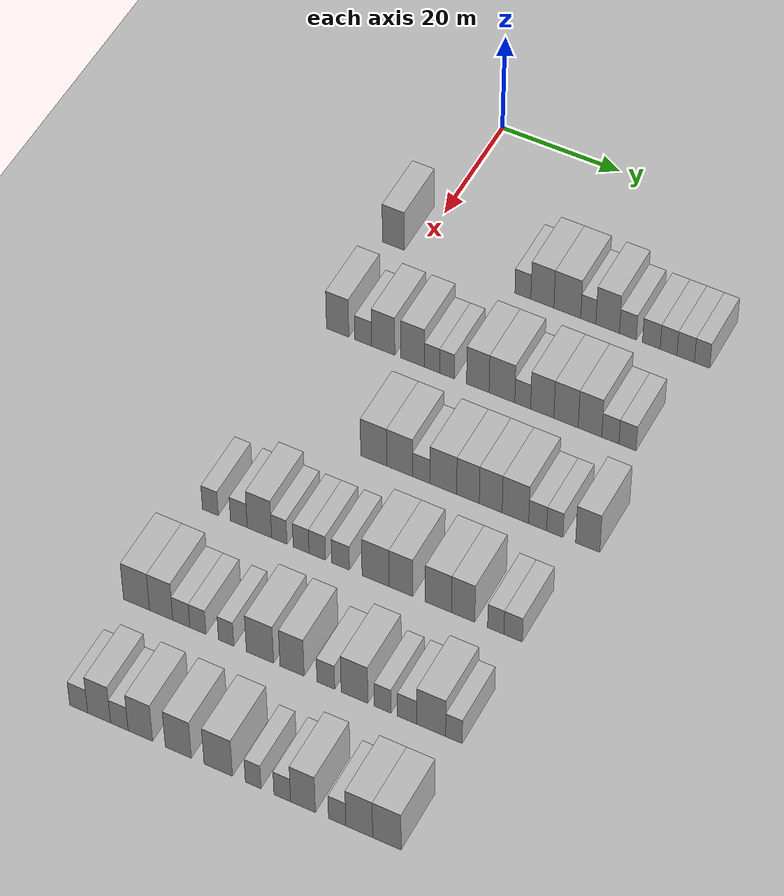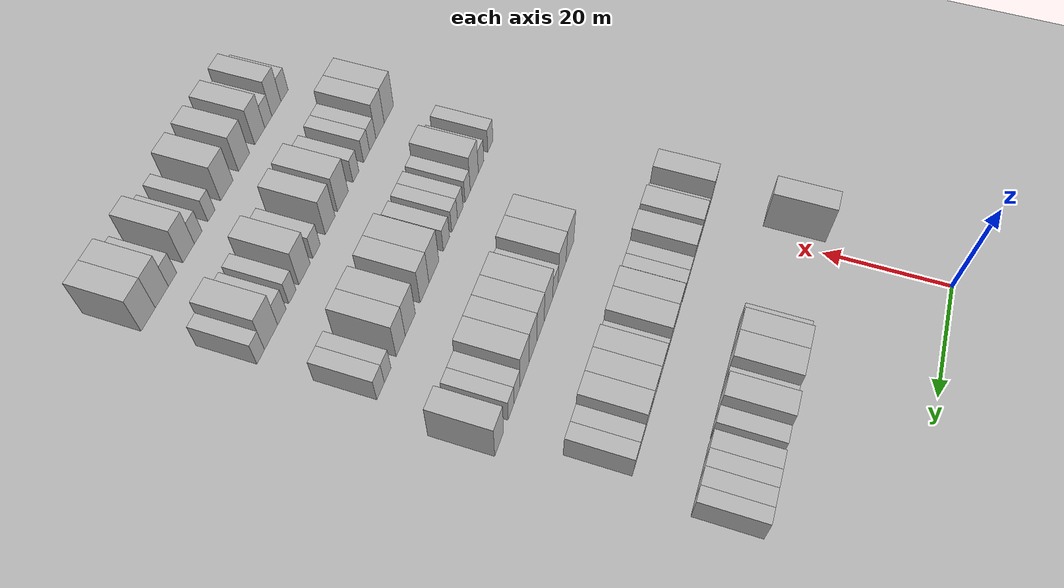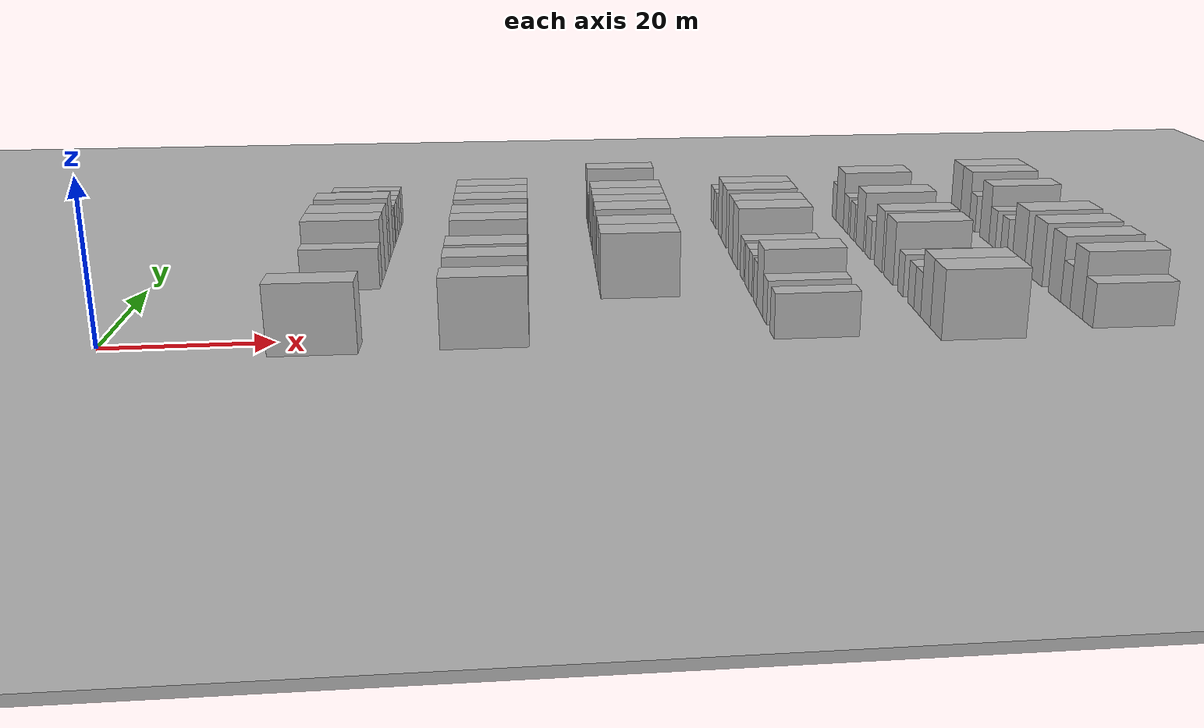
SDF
<sdf version="1.6">
 <world name="default">
  <include><name>ground_plane_1</name><uri>model://HANNAS_ground_plane</uri></include>
  <include>
   <name>ground_plane_2</name>
   <uri>model://HANNAS_ground_plane</uri>
   <pose>100 0 0  0 0 0</pose>
  </include>
  <model name="building_80">
   <static>1</static>
   <pose>25.0000 -3.7532 0 0.000000 0.000000 0.000000</pose>
   <link name="link">
    <pose>0 0 4.50 0 0 0</pose>
    <collision name="collision"><geometry><box><size>10.0000 3.7400 9.0000</size></box></geometry></collision>
    <visual name="visual">
     <cast_shadows>0</cast_shadows>
     <geometry><box><size>10.0000 3.7400 9.0000</size></box></geometry>
     <material>
      <script>
       <uri>model://HANNAS_wall/materials/scripts</uri>
       <uri>model://HANNAS_wall/materials/textures</uri>
       <name>vrc/HANNAS_wall</name>
      </script>
     </material>
    </visual>
   </link>
  </model>
  <model name="building_81">
   <static>1</static>
   <pose>25.0000 18.1059 0 0.000000 0.000000 0.000000</pose>
   <link name="link">
    <pose>0 0 3.00 0 0 0</pose>
    <collision name="collision"><geometry><box><size>10.0000 2.6594 6.0000</size></box></geometry></collision>
    <visual name="visual">
     <cast_shadows>0</cast_shadows>
     <geometry><box><size>10.0000 2.6594 6.0000</size></box></geometry>
     <material>
      <script>
       <uri>model://HANNAS_wall/materials/scripts</uri>
       <uri>model://HANNAS_wall/materials/textures</uri>
       <name>vrc/HANNAS_wall</name>
      </script>
     </material>
    </visual>
   </link>
  </model>
  <model name="building_82">
   <static>1</static>
   <pose>25.0000 21.3565 0 0.000000 0.000000 0.000000</pose>
   <link name="link">
    <pose>0 0 4.50 0 0 0</pose>
    <collision name="collision"><geometry><box><size>10.0000 3.8419 9.0000</size></box></geometry></collision>
    <visual name="visual">
     <cast_shadows>0</cast_shadows>
     <geometry><box><size>10.0000 3.8419 9.0000</size></box></geometry>
     <material>
      <script>
       <uri>model://HANNAS_wall/materials/scripts</uri>
       <uri>model://HANNAS_wall/materials/textures</uri>
       <name>vrc/HANNAS_wall</name>
      </script>
     </material>
    </visual>
   </link>
  </model>
  <model name="building_83">
   <static>1</static>
   <pose>25.0000 25.5041 0 0.000000 0.000000 0.000000</pose>
   <link name="link">
    <pose>0 0 4.50 0 0 0</pose>
    <collision name="collision"><geometry><box><size>10.0000 4.4533 9.0000</size></box></geometry></collision>
    <visual name="visual">
     <cast_shadows>0</cast_shadows>
     <geometry><box><size>10.0000 4.4533 9.0000</size></box></geometry>
     <material>
      <script>
       <uri>model://HANNAS_wall/materials/scripts</uri>
       <uri>model://HANNAS_wall/materials/textures</uri>
       <name>vrc/HANNAS_wall</name>
      </script>
     </material>
    </visual>
   </link>
  </model>
  <model name="building_84">
   <static>1</static>
   <pose>25.0000 28.9731 0 0.000000 0.000000 0.000000</pose>
   <link name="link">
    <pose>0 0 3.00 0 0 0</pose>
    <collision name="collision"><geometry><box><size>10.0000 2.4847 6.0000</size></box></geometry></collision>
    <visual name="visual">
     <cast_shadows>0</cast_shadows>
     <geometry><box><size>10.0000 2.4847 6.0000</size></box></geometry>
     <material>
      <script>
       <uri>model://HANNAS_wall/materials/scripts</uri>
       <uri>model://HANNAS_wall/materials/textures</uri>
       <name>vrc/HANNAS_wall</name>
      </script>
     </material>
    </visual>
   </link>
  </model>
  <model name="building_85">
   <static>1</static>
   <pose>25.0000 32.1549 0 0.000000 0.000000 0.000000</pose>
   <link name="link">
    <pose>0 0 4.50 0 0 0</pose>
    <collision name="collision"><geometry><box><size>10.0000 3.8789 9.0000</size></box></geometry></collision>
    <visual name="visual">
     <cast_shadows>0</cast_shadows>
     <geometry><box><size>10.0000 3.8789 9.0000</size></box></geometry>
     <material>
      <script>
       <uri>model://HANNAS_wall/materials/scripts</uri>
       <uri>model://HANNAS_wall/materials/textures</uri>
       <name>vrc/HANNAS_wall</name>
      </script>
     </material>
    </visual>
   </link>
  </model>
  <model name="building_86">
   <static>1</static>
   <pose>25.0000 35.4867 0 0.000000 0.000000 0.000000</pose>
   <link name="link">
    <pose>0 0 3.00 0 0 0</pose>
    <collision name="collision"><geometry><box><size>10.0000 2.7847 6.0000</size></box></geometry></collision>
    <visual name="visual">
     <cast_shadows>0</cast_shadows>
     <geometry><box><size>10.0000 2.7847 6.0000</size></box></geometry>
     <material>
      <script>
       <uri>model://HANNAS_wall/materials/scripts</uri>
       <uri>model://HANNAS_wall/materials/textures</uri>
       <name>vrc/HANNAS_wall</name>
      </script>
     </material>
    </visual>
   </link>
  </model>
  <model name="building_87">
   <static>1</static>
   <pose>25.0000 39.3214 0 0.000000 0.000000 0.000000</pose>
   <link name="link">
    <pose>0 0 3.00 0 0 0</pose>
    <collision name="collision"><geometry><box><size>10.0000 2.8847 6.0000</size></box></geometry></collision>
    <visual name="visual">
     <cast_shadows>0</cast_shadows>
     <geometry><box><size>10.0000 2.8847 6.0000</size></box></geometry>
     <material>
      <script>
       <uri>model://HANNAS_wall/materials/scripts</uri>
       <uri>model://HANNAS_wall/materials/textures</uri>
       <name>vrc/HANNAS_wall</name>
      </script>
     </material>
    </visual>
   </link>
  </model>
  <model name="building_88">
   <static>1</static>
   <pose>25.0000 42.1348 0 0.000000 0.000000 0.000000</pose>
   <link name="link">
    <pose>0 0 3.00 0 0 0</pose>
    <collision name="collision"><geometry><box><size>10.0000 2.7421 6.0000</size></box></geometry></collision>
    <visual name="visual">
     <cast_shadows>0</cast_shadows>
     <geometry><box><size>10.0000 2.7421 6.0000</size></box></geometry>
     <material>
      <script>
       <uri>model://HANNAS_wall/materials/scripts</uri>
       <uri>model://HANNAS_wall/materials/textures</uri>
       <name>vrc/HANNAS_wall</name>
      </script>
     </material>
    </visual>
   </link>
  </model>
  <model name="building_89">
   <static>1</static>
   <pose>25.0000 44.9251 0 0.000000 0.000000 0.000000</pose>
   <link name="link">
    <pose>0 0 3.00 0 0 0</pose>
    <collision name="collision"><geometry><box><size>10.0000 2.8386 6.0000</size></box></geometry></collision>
    <visual name="visual">
     <cast_shadows>0</cast_shadows>
     <geometry><box><size>10.0000 2.8386 6.0000</size></box></geometry>
     <material>
      <script>
       <uri>model://HANNAS_wall/materials/scripts</uri>
       <uri>model://HANNAS_wall/materials/textures</uri>
       <name>vrc/HANNAS_wall</name>
      </script>
     </material>
    </visual>
   </link>
  </model>
  <model name="building_90">
   <static>1</static>
   <pose>25.0000 47.5923 0 0.000000 0.000000 0.000000</pose>
   <link name="link">
    <pose>0 0 3.00 0 0 0</pose>
    <collision name="collision"><geometry><box><size>10.0000 2.4958 6.0000</size></box></geometry></collision>
    <visual name="visual">
     <cast_shadows>0</cast_shadows>
     <geometry><box><size>10.0000 2.4958 6.0000</size></box></geometry>
     <material>
      <script>
       <uri>model://HANNAS_wall/materials/scripts</uri>
       <uri>model://HANNAS_wall/materials/textures</uri>
       <name>vrc/HANNAS_wall</name>
      </script>
     </material>
    </visual>
   </link>
  </model>
  <model name="building_240">
   <static>1</static>
   <pose>44.0000 -3.2387 0 0.000000 0.000000 0.000000</pose>
   <link name="link">
    <pose>0 0 4.50 0 0 0</pose>
    <collision name="collision"><geometry><box><size>10.0000 3.7554 9.0000</size></box></geometry></collision>
    <visual name="visual">
     <cast_shadows>0</cast_shadows>
     <geometry><box><size>10.0000 3.7554 9.0000</size></box></geometry>
     <material>
      <script>
       <uri>model://HANNAS_wall/materials/scripts</uri>
       <uri>model://HANNAS_wall/materials/textures</uri>
       <name>vrc/HANNAS_wall</name>
      </script>
     </material>
    </visual>
   </link>
  </model>
  <model name="building_241">
   <static>1</static>
   <pose>44.0000 1.0458 0 0.000000 0.000000 0.000000</pose>
   <link name="link">
    <pose>0 0 3.00 0 0 0</pose>
    <collision name="collision"><geometry><box><size>10.0000 2.8136 6.0000</size></box></geometry></collision>
    <visual name="visual">
     <cast_shadows>0</cast_shadows>
     <geometry><box><size>10.0000 2.8136 6.0000</size></box></geometry>
     <material>
      <script>
       <uri>model://HANNAS_wall/materials/scripts</uri>
       <uri>model://HANNAS_wall/materials/textures</uri>
       <name>vrc/HANNAS_wall</name>
      </script>
     </material>
    </visual>
   </link>
  </model>
  <model name="building_242">
   <static>1</static>
   <pose>44.0000 4.3901 0 0.000000 0.000000 0.000000</pose>
   <link name="link">
    <pose>0 0 4.50 0 0 0</pose>
    <collision name="collision"><geometry><box><size>10.0000 3.8751 9.0000</size></box></geometry></collision>
    <visual name="visual">
     <cast_shadows>0</cast_shadows>
     <geometry><box><size>10.0000 3.8751 9.0000</size></box></geometry>
     <material>
      <script>
       <uri>model://HANNAS_wall/materials/scripts</uri>
       <uri>model://HANNAS_wall/materials/textures</uri>
       <name>vrc/HANNAS_wall</name>
      </script>
     </material>
    </visual>
   </link>
  </model>
  <model name="building_243">
   <static>1</static>
   <pose>44.0000 9.2871 0 0.000000 0.000000 0.000000</pose>
   <link name="link">
    <pose>0 0 4.50 0 0 0</pose>
    <collision name="collision"><geometry><box><size>10.0000 3.9188 9.0000</size></box></geometry></collision>
    <visual name="visual">
     <cast_shadows>0</cast_shadows>
     <geometry><box><size>10.0000 3.9188 9.0000</size></box></geometry>
     <material>
      <script>
       <uri>model://HANNAS_wall/materials/scripts</uri>
       <uri>model://HANNAS_wall/materials/textures</uri>
       <name>vrc/HANNAS_wall</name>
      </script>
     </material>
    </visual>
   </link>
  </model>
  <model name="building_244">
   <static>1</static>
   <pose>44.0000 12.5008 0 0.000000 0.000000 0.000000</pose>
   <link name="link">
    <pose>0 0 3.00 0 0 0</pose>
    <collision name="collision"><geometry><box><size>10.0000 2.5086 6.0000</size></box></geometry></collision>
    <visual name="visual">
     <cast_shadows>0</cast_shadows>
     <geometry><box><size>10.0000 2.5086 6.0000</size></box></geometry>
     <material>
      <script>
       <uri>model://HANNAS_wall/materials/scripts</uri>
       <uri>model://HANNAS_wall/materials/textures</uri>
       <name>vrc/HANNAS_wall</name>
      </script>
     </material>
    </visual>
   </link>
  </model>
  <model name="building_245">
   <static>1</static>
   <pose>44.0000 14.9804 0 0.000000 0.000000 0.000000</pose>
   <link name="link">
    <pose>0 0 3.00 0 0 0</pose>
    <collision name="collision"><geometry><box><size>10.0000 2.4506 6.0000</size></box></geometry></collision>
    <visual name="visual">
     <cast_shadows>0</cast_shadows>
     <geometry><box><size>10.0000 2.4506 6.0000</size></box></geometry>
     <material>
      <script>
       <uri>model://HANNAS_wall/materials/scripts</uri>
       <uri>model://HANNAS_wall/materials/textures</uri>
       <name>vrc/HANNAS_wall</name>
      </script>
     </material>
    </visual>
   </link>
  </model>
  <model name="building_246">
   <static>1</static>
   <pose>44.0000 20.0556 0 0.000000 0.000000 0.000000</pose>
   <link name="link">
    <pose>0 0 4.50 0 0 0</pose>
    <collision name="collision"><geometry><box><size>10.0000 3.6997 9.0000</size></box></geometry></collision>
    <visual name="visual">
     <cast_shadows>0</cast_shadows>
     <geometry><box><size>10.0000 3.6997 9.0000</size></box></geometry>
     <material>
      <script>
       <uri>model://HANNAS_wall/materials/scripts</uri>
       <uri>model://HANNAS_wall/materials/textures</uri>
       <name>vrc/HANNAS_wall</name>
      </script>
     </material>
    </visual>
   </link>
  </model>
  <model name="building_247">
   <static>1</static>
   <pose>44.0000 24.0072 0 0.000000 0.000000 0.000000</pose>
   <link name="link">
    <pose>0 0 4.50 0 0 0</pose>
    <collision name="collision"><geometry><box><size>10.0000 4.2035 9.0000</size></box></geometry></collision>
    <visual name="visual">
     <cast_shadows>0</cast_shadows>
     <geometry><box><size>10.0000 4.2035 9.0000</size></box></geometry>
     <material>
      <script>
       <uri>model://HANNAS_wall/materials/scripts</uri>
       <uri>model://HANNAS_wall/materials/textures</uri>
       <name>vrc/HANNAS_wall</name>
      </script>
     </material>
    </visual>
   </link>
  </model>
  <model name="building_248">
   <static>1</static>
   <pose>44.0000 27.3978 0 0.000000 0.000000 0.000000</pose>
   <link name="link">
    <pose>0 0 3.00 0 0 0</pose>
    <collision name="collision"><geometry><box><size>10.0000 2.5779 6.0000</size></box></geometry></collision>
    <visual name="visual">
     <cast_shadows>0</cast_shadows>
     <geometry><box><size>10.0000 2.5779 6.0000</size></box></geometry>
     <material>
      <script>
       <uri>model://HANNAS_wall/materials/scripts</uri>
       <uri>model://HANNAS_wall/materials/textures</uri>
       <name>vrc/HANNAS_wall</name>
      </script>
     </material>
    </visual>
   </link>
  </model>
  <model name="building_249">
   <static>1</static>
   <pose>44.0000 30.5820 0 0.000000 0.000000 0.000000</pose>
   <link name="link">
    <pose>0 0 4.50 0 0 0</pose>
    <collision name="collision"><geometry><box><size>10.0000 3.7905 9.0000</size></box></geometry></collision>
    <visual name="visual">
     <cast_shadows>0</cast_shadows>
     <geometry><box><size>10.0000 3.7905 9.0000</size></box></geometry>
     <material>
      <script>
       <uri>model://HANNAS_wall/materials/scripts</uri>
       <uri>model://HANNAS_wall/materials/textures</uri>
       <name>vrc/HANNAS_wall</name>
      </script>
     </material>
    </visual>
   </link>
  </model>
  <model name="building_250">
   <static>1</static>
   <pose>44.0000 34.4480 0 0.000000 0.000000 0.000000</pose>
   <link name="link">
    <pose>0 0 4.50 0 0 0</pose>
    <collision name="collision"><geometry><box><size>10.0000 3.9415 9.0000</size></box></geometry></collision>
    <visual name="visual">
     <cast_shadows>0</cast_shadows>
     <geometry><box><size>10.0000 3.9415 9.0000</size></box></geometry>
     <material>
      <script>
       <uri>model://HANNAS_wall/materials/scripts</uri>
       <uri>model://HANNAS_wall/materials/textures</uri>
       <name>vrc/HANNAS_wall</name>
      </script>
     </material>
    </visual>
   </link>
  </model>
  <model name="building_251">
   <static>1</static>
   <pose>44.0000 38.3183 0 0.000000 0.000000 0.000000</pose>
   <link name="link">
    <pose>0 0 4.50 0 0 0</pose>
    <collision name="collision"><geometry><box><size>10.0000 3.7991 9.0000</size></box></geometry></collision>
    <visual name="visual">
     <cast_shadows>0</cast_shadows>
     <geometry><box><size>10.0000 3.7991 9.0000</size></box></geometry>
     <material>
      <script>
       <uri>model://HANNAS_wall/materials/scripts</uri>
       <uri>model://HANNAS_wall/materials/textures</uri>
       <name>vrc/HANNAS_wall</name>
      </script>
     </material>
    </visual>
   </link>
  </model>
  <model name="building_252">
   <static>1</static>
   <pose>44.0000 41.6049 0 0.000000 0.000000 0.000000</pose>
   <link name="link">
    <pose>0 0 3.00 0 0 0</pose>
    <collision name="collision"><geometry><box><size>10.0000 2.7740 6.0000</size></box></geometry></collision>
    <visual name="visual">
     <cast_shadows>0</cast_shadows>
     <geometry><box><size>10.0000 2.7740 6.0000</size></box></geometry>
     <material>
      <script>
       <uri>model://HANNAS_wall/materials/scripts</uri>
       <uri>model://HANNAS_wall/materials/textures</uri>
       <name>vrc/HANNAS_wall</name>
      </script>
     </material>
    </visual>
   </link>
  </model>
  <model name="building_253">
   <static>1</static>
   <pose>44.0000 44.3635 0 0.000000 0.000000 0.000000</pose>
   <link name="link">
    <pose>0 0 3.00 0 0 0</pose>
    <collision name="collision"><geometry><box><size>10.0000 2.7433 6.0000</size></box></geometry></collision>
    <visual name="visual">
     <cast_shadows>0</cast_shadows>
     <geometry><box><size>10.0000 2.7433 6.0000</size></box></geometry>
     <material>
      <script>
       <uri>model://HANNAS_wall/materials/scripts</uri>
       <uri>model://HANNAS_wall/materials/textures</uri>
       <name>vrc/HANNAS_wall</name>
      </script>
     </material>
    </visual>
   </link>
  </model>
  <model name="building_414">
   <static>1</static>
   <pose>63.0000 12.7236 0 0.000000 0.000000 0.000000</pose>
   <link name="link">
    <pose>0 0 4.50 0 0 0</pose>
    <collision name="collision"><geometry><box><size>10.0000 4.2315 9.0000</size></box></geometry></collision>
    <visual name="visual">
     <cast_shadows>0</cast_shadows>
     <geometry><box><size>10.0000 4.2315 9.0000</size></box></geometry>
     <material>
      <script>
       <uri>model://HANNAS_wall/materials/scripts</uri>
       <uri>model://HANNAS_wall/materials/textures</uri>
       <name>vrc/HANNAS_wall</name>
      </script>
     </material>
    </visual>
   </link>
  </model>
  <model name="building_415">
   <static>1</static>
   <pose>63.0000 16.9384 0 0.000000 0.000000 0.000000</pose>
   <link name="link">
    <pose>0 0 4.50 0 0 0</pose>
    <collision name="collision"><geometry><box><size>10.0000 4.1982 9.0000</size></box></geometry></collision>
    <visual name="visual">
     <cast_shadows>0</cast_shadows>
     <geometry><box><size>10.0000 4.1982 9.0000</size></box></geometry>
     <material>
      <script>
       <uri>model://HANNAS_wall/materials/scripts</uri>
       <uri>model://HANNAS_wall/materials/textures</uri>
       <name>vrc/HANNAS_wall</name>
      </script>
     </material>
    </visual>
   </link>
  </model>
  <model name="building_416">
   <static>1</static>
   <pose>63.0000 20.4522 0 0.000000 0.000000 0.000000</pose>
   <link name="link">
    <pose>0 0 3.00 0 0 0</pose>
    <collision name="collision"><geometry><box><size>10.0000 2.8294 6.0000</size></box></geometry></collision>
    <visual name="visual">
     <cast_shadows>0</cast_shadows>
     <geometry><box><size>10.0000 2.8294 6.0000</size></box></geometry>
     <material>
      <script>
       <uri>model://HANNAS_wall/materials/scripts</uri>
       <uri>model://HANNAS_wall/materials/textures</uri>
       <name>vrc/HANNAS_wall</name>
      </script>
     </material>
    </visual>
   </link>
  </model>
  <model name="building_417">
   <static>1</static>
   <pose>63.0000 24.0124 0 0.000000 0.000000 0.000000</pose>
   <link name="link">
    <pose>0 0 4.50 0 0 0</pose>
    <collision name="collision"><geometry><box><size>10.0000 4.2909 9.0000</size></box></geometry></collision>
    <visual name="visual">
     <cast_shadows>0</cast_shadows>
     <geometry><box><size>10.0000 4.2909 9.0000</size></box></geometry>
     <material>
      <script>
       <uri>model://HANNAS_wall/materials/scripts</uri>
       <uri>model://HANNAS_wall/materials/textures</uri>
       <name>vrc/HANNAS_wall</name>
      </script>
     </material>
    </visual>
   </link>
  </model>
  <model name="building_418">
   <static>1</static>
   <pose>63.0000 27.9723 0 0.000000 0.000000 0.000000</pose>
   <link name="link">
    <pose>0 0 4.50 0 0 0</pose>
    <collision name="collision"><geometry><box><size>10.0000 3.6291 9.0000</size></box></geometry></collision>
    <visual name="visual">
     <cast_shadows>0</cast_shadows>
     <geometry><box><size>10.0000 3.6291 9.0000</size></box></geometry>
     <material>
      <script>
       <uri>model://HANNAS_wall/materials/scripts</uri>
       <uri>model://HANNAS_wall/materials/textures</uri>
       <name>vrc/HANNAS_wall</name>
      </script>
     </material>
    </visual>
   </link>
  </model>
  <model name="building_419">
   <static>1</static>
   <pose>63.0000 31.6232 0 0.000000 0.000000 0.000000</pose>
   <link name="link">
    <pose>0 0 4.50 0 0 0</pose>
    <collision name="collision"><geometry><box><size>10.0000 3.6726 9.0000</size></box></geometry></collision>
    <visual name="visual">
     <cast_shadows>0</cast_shadows>
     <geometry><box><size>10.0000 3.6726 9.0000</size></box></geometry>
     <material>
      <script>
       <uri>model://HANNAS_wall/materials/scripts</uri>
       <uri>model://HANNAS_wall/materials/textures</uri>
       <name>vrc/HANNAS_wall</name>
      </script>
     </material>
    </visual>
   </link>
  </model>
  <model name="building_420">
   <static>1</static>
   <pose>63.0000 35.5750 0 0.000000 0.000000 0.000000</pose>
   <link name="link">
    <pose>0 0 4.50 0 0 0</pose>
    <collision name="collision"><geometry><box><size>10.0000 4.2311 9.0000</size></box></geometry></collision>
    <visual name="visual">
     <cast_shadows>0</cast_shadows>
     <geometry><box><size>10.0000 4.2311 9.0000</size></box></geometry>
     <material>
      <script>
       <uri>model://HANNAS_wall/materials/scripts</uri>
       <uri>model://HANNAS_wall/materials/textures</uri>
       <name>vrc/HANNAS_wall</name>
      </script>
     </material>
    </visual>
   </link>
  </model>
  <model name="building_421">
   <static>1</static>
   <pose>63.0000 39.1157 0 0.000000 0.000000 0.000000</pose>
   <link name="link">
    <pose>0 0 3.00 0 0 0</pose>
    <collision name="collision"><geometry><box><size>10.0000 2.8503 6.0000</size></box></geometry></collision>
    <visual name="visual">
     <cast_shadows>0</cast_shadows>
     <geometry><box><size>10.0000 2.8503 6.0000</size></box></geometry>
     <material>
      <script>
       <uri>model://HANNAS_wall/materials/scripts</uri>
       <uri>model://HANNAS_wall/materials/textures</uri>
       <name>vrc/HANNAS_wall</name>
      </script>
     </material>
    </visual>
   </link>
  </model>
  <model name="building_422">
   <static>1</static>
   <pose>63.0000 41.8371 0 0.000000 0.000000 0.000000</pose>
   <link name="link">
    <pose>0 0 3.00 0 0 0</pose>
    <collision name="collision"><geometry><box><size>10.0000 2.5925 6.0000</size></box></geometry></collision>
    <visual name="visual">
     <cast_shadows>0</cast_shadows>
     <geometry><box><size>10.0000 2.5925 6.0000</size></box></geometry>
     <material>
      <script>
       <uri>model://HANNAS_wall/materials/scripts</uri>
       <uri>model://HANNAS_wall/materials/textures</uri>
       <name>vrc/HANNAS_wall</name>
      </script>
     </material>
    </visual>
   </link>
  </model>
  <model name="building_423">
   <static>1</static>
   <pose>63.0000 47.0378 0 0.000000 0.000000 0.000000</pose>
   <link name="link">
    <pose>0 0 4.50 0 0 0</pose>
    <collision name="collision"><geometry><box><size>10.0000 3.8088 9.0000</size></box></geometry></collision>
    <visual name="visual">
     <cast_shadows>0</cast_shadows>
     <geometry><box><size>10.0000 3.8088 9.0000</size></box></geometry>
     <material>
      <script>
       <uri>model://HANNAS_wall/materials/scripts</uri>
       <uri>model://HANNAS_wall/materials/textures</uri>
       <name>vrc/HANNAS_wall</name>
      </script>
     </material>
    </visual>
   </link>
  </model>
  <model name="building_586">
   <static>1</static>
   <pose>82.0000 -3.7519 0 0.000000 0.000000 0.000000</pose>
   <link name="link">
    <pose>0 0 3.00 0 0 0</pose>
    <collision name="collision"><geometry><box><size>10.0000 2.5932 6.0000</size></box></geometry></collision>
    <visual name="visual">
     <cast_shadows>0</cast_shadows>
     <geometry><box><size>10.0000 2.5932 6.0000</size></box></geometry>
     <material>
      <script>
       <uri>model://HANNAS_wall/materials/scripts</uri>
       <uri>model://HANNAS_wall/materials/textures</uri>
       <name>vrc/HANNAS_wall</name>
      </script>
     </material>
    </visual>
   </link>
  </model>
  <model name="building_587">
   <static>1</static>
   <pose>82.0000 0.9105 0 0.000000 0.000000 0.000000</pose>
   <link name="link">
    <pose>0 0 3.00 0 0 0</pose>
    <collision name="collision"><geometry><box><size>10.0000 2.7316 6.0000</size></box></geometry></collision>
    <visual name="visual">
     <cast_shadows>0</cast_shadows>
     <geometry><box><size>10.0000 2.7316 6.0000</size></box></geometry>
     <material>
      <script>
       <uri>model://HANNAS_wall/materials/scripts</uri>
       <uri>model://HANNAS_wall/materials/textures</uri>
       <name>vrc/HANNAS_wall</name>
      </script>
     </material>
    </visual>
   </link>
  </model>
  <model name="building_588">
   <static>1</static>
   <pose>82.0000 4.2556 0 0.000000 0.000000 0.000000</pose>
   <link name="link">
    <pose>0 0 4.50 0 0 0</pose>
    <collision name="collision"><geometry><box><size>10.0000 3.9587 9.0000</size></box></geometry></collision>
    <visual name="visual">
     <cast_shadows>0</cast_shadows>
     <geometry><box><size>10.0000 3.9587 9.0000</size></box></geometry>
     <material>
      <script>
       <uri>model://HANNAS_wall/materials/scripts</uri>
       <uri>model://HANNAS_wall/materials/textures</uri>
       <name>vrc/HANNAS_wall</name>
      </script>
     </material>
    </visual>
   </link>
  </model>
  <model name="building_589">
   <static>1</static>
   <pose>82.0000 7.4759 0 0.000000 0.000000 0.000000</pose>
   <link name="link">
    <pose>0 0 3.00 0 0 0</pose>
    <collision name="collision"><geometry><box><size>10.0000 2.4819 6.0000</size></box></geometry></collision>
    <visual name="visual">
     <cast_shadows>0</cast_shadows>
     <geometry><box><size>10.0000 2.4819 6.0000</size></box></geometry>
     <material>
      <script>
       <uri>model://HANNAS_wall/materials/scripts</uri>
       <uri>model://HANNAS_wall/materials/textures</uri>
       <name>vrc/HANNAS_wall</name>
      </script>
     </material>
    </visual>
   </link>
  </model>
  <model name="building_590">
   <static>1</static>
   <pose>82.0000 10.9985 0 0.000000 0.000000 0.000000</pose>
   <link name="link">
    <pose>0 0 3.00 0 0 0</pose>
    <collision name="collision"><geometry><box><size>10.0000 2.5631 6.0000</size></box></geometry></collision>
    <visual name="visual">
     <cast_shadows>0</cast_shadows>
     <geometry><box><size>10.0000 2.5631 6.0000</size></box></geometry>
     <material>
      <script>
       <uri>model://HANNAS_wall/materials/scripts</uri>
       <uri>model://HANNAS_wall/materials/textures</uri>
       <name>vrc/HANNAS_wall</name>
      </script>
     </material>
    </visual>
   </link>
  </model>
  <model name="building_591">
   <static>1</static>
   <pose>82.0000 13.6077 0 0.000000 0.000000 0.000000</pose>
   <link name="link">
    <pose>0 0 3.00 0 0 0</pose>
    <collision name="collision"><geometry><box><size>10.0000 2.6555 6.0000</size></box></geometry></collision>
    <visual name="visual">
     <cast_shadows>0</cast_shadows>
     <geometry><box><size>10.0000 2.6555 6.0000</size></box></geometry>
     <material>
      <script>
       <uri>model://HANNAS_wall/materials/scripts</uri>
       <uri>model://HANNAS_wall/materials/textures</uri>
       <name>vrc/HANNAS_wall</name>
      </script>
     </material>
    </visual>
   </link>
  </model>
  <model name="building_592">
   <static>1</static>
   <pose>82.0000 17.3549 0 0.000000 0.000000 0.000000</pose>
   <link name="link">
    <pose>0 0 3.00 0 0 0</pose>
    <collision name="collision"><geometry><box><size>10.0000 2.8389 6.0000</size></box></geometry></collision>
    <visual name="visual">
     <cast_shadows>0</cast_shadows>
     <geometry><box><size>10.0000 2.8389 6.0000</size></box></geometry>
     <material>
      <script>
       <uri>model://HANNAS_wall/materials/scripts</uri>
       <uri>model://HANNAS_wall/materials/textures</uri>
       <name>vrc/HANNAS_wall</name>
      </script>
     </material>
    </visual>
   </link>
  </model>
  <model name="building_593">
   <static>1</static>
   <pose>82.0000 22.9249 0 0.000000 0.000000 0.000000</pose>
   <link name="link">
    <pose>0 0 4.50 0 0 0</pose>
    <collision name="collision"><geometry><box><size>10.0000 4.3012 9.0000</size></box></geometry></collision>
    <visual name="visual">
     <cast_shadows>0</cast_shadows>
     <geometry><box><size>10.0000 4.3012 9.0000</size></box></geometry>
     <material>
      <script>
       <uri>model://HANNAS_wall/materials/scripts</uri>
       <uri>model://HANNAS_wall/materials/textures</uri>
       <name>vrc/HANNAS_wall</name>
      </script>
     </material>
    </visual>
   </link>
  </model>
  <model name="building_594">
   <static>1</static>
   <pose>82.0000 26.9511 0 0.000000 0.000000 0.000000</pose>
   <link name="link">
    <pose>0 0 4.50 0 0 0</pose>
    <collision name="collision"><geometry><box><size>10.0000 3.7511 9.0000</size></box></geometry></collision>
    <visual name="visual">
     <cast_shadows>0</cast_shadows>
     <geometry><box><size>10.0000 3.7511 9.0000</size></box></geometry>
     <material>
      <script>
       <uri>model://HANNAS_wall/materials/scripts</uri>
       <uri>model://HANNAS_wall/materials/textures</uri>
       <name>vrc/HANNAS_wall</name>
      </script>
     </material>
    </visual>
   </link>
  </model>
  <model name="building_595">
   <static>1</static>
   <pose>82.0000 32.8904 0 0.000000 0.000000 0.000000</pose>
   <link name="link">
    <pose>0 0 4.50 0 0 0</pose>
    <collision name="collision"><geometry><box><size>10.0000 4.1275 9.0000</size></box></geometry></collision>
    <visual name="visual">
     <cast_shadows>0</cast_shadows>
     <geometry><box><size>10.0000 4.1275 9.0000</size></box></geometry>
     <material>
      <script>
       <uri>model://HANNAS_wall/materials/scripts</uri>
       <uri>model://HANNAS_wall/materials/textures</uri>
       <name>vrc/HANNAS_wall</name>
      </script>
     </material>
    </visual>
   </link>
  </model>
  <model name="building_596">
   <static>1</static>
   <pose>82.0000 36.7767 0 0.000000 0.000000 0.000000</pose>
   <link name="link">
    <pose>0 0 4.50 0 0 0</pose>
    <collision name="collision"><geometry><box><size>10.0000 3.6451 9.0000</size></box></geometry></collision>
    <visual name="visual">
     <cast_shadows>0</cast_shadows>
     <geometry><box><size>10.0000 3.6451 9.0000</size></box></geometry>
     <material>
      <script>
       <uri>model://HANNAS_wall/materials/scripts</uri>
       <uri>model://HANNAS_wall/materials/textures</uri>
       <name>vrc/HANNAS_wall</name>
      </script>
     </material>
    </visual>
   </link>
  </model>
  <model name="building_597">
   <static>1</static>
   <pose>82.0000 41.8745 0 0.000000 0.000000 0.000000</pose>
   <link name="link">
    <pose>0 0 3.00 0 0 0</pose>
    <collision name="collision"><geometry><box><size>10.0000 2.5504 6.0000</size></box></geometry></collision>
    <visual name="visual">
     <cast_shadows>0</cast_shadows>
     <geometry><box><size>10.0000 2.5504 6.0000</size></box></geometry>
     <material>
      <script>
       <uri>model://HANNAS_wall/materials/scripts</uri>
       <uri>model://HANNAS_wall/materials/textures</uri>
       <name>vrc/HANNAS_wall</name>
      </script>
     </material>
    </visual>
   </link>
  </model>
  <model name="building_598">
   <static>1</static>
   <pose>82.0000 44.5831 0 0.000000 0.000000 0.000000</pose>
   <link name="link">
    <pose>0 0 3.00 0 0 0</pose>
    <collision name="collision"><geometry><box><size>10.0000 2.8668 6.0000</size></box></geometry></collision>
    <visual name="visual">
     <cast_shadows>0</cast_shadows>
     <geometry><box><size>10.0000 2.8668 6.0000</size></box></geometry>
     <material>
      <script>
       <uri>model://HANNAS_wall/materials/scripts</uri>
       <uri>model://HANNAS_wall/materials/textures</uri>
       <name>vrc/HANNAS_wall</name>
      </script>
     </material>
    </visual>
   </link>
  </model>
  <model name="building_767">
   <static>1</static>
   <pose>101.0000 -5.0295 0 0.000000 0.000000 0.000000</pose>
   <link name="link">
    <pose>0 0 4.50 0 0 0</pose>
    <collision name="collision"><geometry><box><size>10.0000 4.1819 9.0000</size></box></geometry></collision>
    <visual name="visual">
     <cast_shadows>0</cast_shadows>
     <geometry><box><size>10.0000 4.1819 9.0000</size></box></geometry>
     <material>
      <script>
       <uri>model://HANNAS_wall/materials/scripts</uri>
       <uri>model://HANNAS_wall/materials/textures</uri>
       <name>vrc/HANNAS_wall</name>
      </script>
     </material>
    </visual>
   </link>
  </model>
  <model name="building_768">
   <static>1</static>
   <pose>101.0000 -1.0654 0 0.000000 0.000000 0.000000</pose>
   <link name="link">
    <pose>0 0 4.50 0 0 0</pose>
    <collision name="collision"><geometry><box><size>10.0000 3.7462 9.0000</size></box></geometry></collision>
    <visual name="visual">
     <cast_shadows>0</cast_shadows>
     <geometry><box><size>10.0000 3.7462 9.0000</size></box></geometry>
     <material>
      <script>
       <uri>model://HANNAS_wall/materials/scripts</uri>
       <uri>model://HANNAS_wall/materials/textures</uri>
       <name>vrc/HANNAS_wall</name>
      </script>
     </material>
    </visual>
   </link>
  </model>
  <model name="building_769">
   <static>1</static>
   <pose>101.0000 2.1765 0 0.000000 0.000000 0.000000</pose>
   <link name="link">
    <pose>0 0 3.00 0 0 0</pose>
    <collision name="collision"><geometry><box><size>10.0000 2.7376 6.0000</size></box></geometry></collision>
    <visual name="visual">
     <cast_shadows>0</cast_shadows>
     <geometry><box><size>10.0000 2.7376 6.0000</size></box></geometry>
     <material>
      <script>
       <uri>model://HANNAS_wall/materials/scripts</uri>
       <uri>model://HANNAS_wall/materials/textures</uri>
       <name>vrc/HANNAS_wall</name>
      </script>
     </material>
    </visual>
   </link>
  </model>
  <model name="building_770">
   <static>1</static>
   <pose>101.0000 4.8379 0 0.000000 0.000000 0.000000</pose>
   <link name="link">
    <pose>0 0 3.00 0 0 0</pose>
    <collision name="collision"><geometry><box><size>10.0000 2.5852 6.0000</size></box></geometry></collision>
    <visual name="visual">
     <cast_shadows>0</cast_shadows>
     <geometry><box><size>10.0000 2.5852 6.0000</size></box></geometry>
     <material>
      <script>
       <uri>model://HANNAS_wall/materials/scripts</uri>
       <uri>model://HANNAS_wall/materials/textures</uri>
       <name>vrc/HANNAS_wall</name>
      </script>
     </material>
    </visual>
   </link>
  </model>
  <model name="building_771">
   <static>1</static>
   <pose>101.0000 9.3498 0 0.000000 0.000000 0.000000</pose>
   <link name="link">
    <pose>0 0 3.00 0 0 0</pose>
    <collision name="collision"><geometry><box><size>10.0000 2.4385 6.0000</size></box></geometry></collision>
    <visual name="visual">
     <cast_shadows>0</cast_shadows>
     <geometry><box><size>10.0000 2.4385 6.0000</size></box></geometry>
     <material>
      <script>
       <uri>model://HANNAS_wall/materials/scripts</uri>
       <uri>model://HANNAS_wall/materials/textures</uri>
       <name>vrc/HANNAS_wall</name>
      </script>
     </material>
    </visual>
   </link>
  </model>
  <model name="building_772">
   <static>1</static>
   <pose>101.0000 14.7302 0 0.000000 0.000000 0.000000</pose>
   <link name="link">
    <pose>0 0 4.50 0 0 0</pose>
    <collision name="collision"><geometry><box><size>10.0000 4.3224 9.0000</size></box></geometry></collision>
    <visual name="visual">
     <cast_shadows>0</cast_shadows>
     <geometry><box><size>10.0000 4.3224 9.0000</size></box></geometry>
     <material>
      <script>
       <uri>model://HANNAS_wall/materials/scripts</uri>
       <uri>model://HANNAS_wall/materials/textures</uri>
       <name>vrc/HANNAS_wall</name>
      </script>
     </material>
    </visual>
   </link>
  </model>
  <model name="building_773">
   <static>1</static>
   <pose>101.0000 19.7935 0 0.000000 0.000000 0.000000</pose>
   <link name="link">
    <pose>0 0 4.50 0 0 0</pose>
    <collision name="collision"><geometry><box><size>10.0000 3.8040 9.0000</size></box></geometry></collision>
    <visual name="visual">
     <cast_shadows>0</cast_shadows>
     <geometry><box><size>10.0000 3.8040 9.0000</size></box></geometry>
     <material>
      <script>
       <uri>model://HANNAS_wall/materials/scripts</uri>
       <uri>model://HANNAS_wall/materials/textures</uri>
       <name>vrc/HANNAS_wall</name>
      </script>
     </material>
    </visual>
   </link>
  </model>
  <model name="building_774">
   <static>1</static>
   <pose>101.0000 25.0916 0 0.000000 0.000000 0.000000</pose>
   <link name="link">
    <pose>0 0 3.00 0 0 0</pose>
    <collision name="collision"><geometry><box><size>10.0000 2.7923 6.0000</size></box></geometry></collision>
    <visual name="visual">
     <cast_shadows>0</cast_shadows>
     <geometry><box><size>10.0000 2.7923 6.0000</size></box></geometry>
     <material>
      <script>
       <uri>model://HANNAS_wall/materials/scripts</uri>
       <uri>model://HANNAS_wall/materials/textures</uri>
       <name>vrc/HANNAS_wall</name>
      </script>
     </material>
    </visual>
   </link>
  </model>
  <model name="building_775">
   <static>1</static>
   <pose>101.0000 29.5695 0 0.000000 0.000000 0.000000</pose>
   <link name="link">
    <pose>0 0 4.50 0 0 0</pose>
    <collision name="collision"><geometry><box><size>10.0000 4.1636 9.0000</size></box></geometry></collision>
    <visual name="visual">
     <cast_shadows>0</cast_shadows>
     <geometry><box><size>10.0000 4.1636 9.0000</size></box></geometry>
     <material>
      <script>
       <uri>model://HANNAS_wall/materials/scripts</uri>
       <uri>model://HANNAS_wall/materials/textures</uri>
       <name>vrc/HANNAS_wall</name>
      </script>
     </material>
    </visual>
   </link>
  </model>
  <model name="building_776">
   <static>1</static>
   <pose>101.0000 33.9474 0 0.000000 0.000000 0.000000</pose>
   <link name="link">
    <pose>0 0 3.00 0 0 0</pose>
    <collision name="collision"><geometry><box><size>10.0000 2.5922 6.0000</size></box></geometry></collision>
    <visual name="visual">
     <cast_shadows>0</cast_shadows>
     <geometry><box><size>10.0000 2.5922 6.0000</size></box></geometry>
     <material>
      <script>
       <uri>model://HANNAS_wall/materials/scripts</uri>
       <uri>model://HANNAS_wall/materials/textures</uri>
       <name>vrc/HANNAS_wall</name>
      </script>
     </material>
    </visual>
   </link>
  </model>
  <model name="building_777">
   <static>1</static>
   <pose>101.0000 37.7119 0 0.000000 0.000000 0.000000</pose>
   <link name="link">
    <pose>0 0 3.00 0 0 0</pose>
    <collision name="collision"><geometry><box><size>10.0000 2.9367 6.0000</size></box></geometry></collision>
    <visual name="visual">
     <cast_shadows>0</cast_shadows>
     <geometry><box><size>10.0000 2.9367 6.0000</size></box></geometry>
     <material>
      <script>
       <uri>model://HANNAS_wall/materials/scripts</uri>
       <uri>model://HANNAS_wall/materials/textures</uri>
       <name>vrc/HANNAS_wall</name>
      </script>
     </material>
    </visual>
   </link>
  </model>
  <model name="building_778">
   <static>1</static>
   <pose>101.0000 41.4206 0 0.000000 0.000000 0.000000</pose>
   <link name="link">
    <pose>0 0 4.50 0 0 0</pose>
    <collision name="collision"><geometry><box><size>10.0000 4.4808 9.0000</size></box></geometry></collision>
    <visual name="visual">
     <cast_shadows>0</cast_shadows>
     <geometry><box><size>10.0000 4.4808 9.0000</size></box></geometry>
     <material>
      <script>
       <uri>model://HANNAS_wall/materials/scripts</uri>
       <uri>model://HANNAS_wall/materials/textures</uri>
       <name>vrc/HANNAS_wall</name>
      </script>
     </material>
    </visual>
   </link>
  </model>
  <model name="building_779">
   <static>1</static>
   <pose>101.0000 44.9312 0 0.000000 0.000000 0.000000</pose>
   <link name="link">
    <pose>0 0 3.00 0 0 0</pose>
    <collision name="collision"><geometry><box><size>10.0000 2.5403 6.0000</size></box></geometry></collision>
    <visual name="visual">
     <cast_shadows>0</cast_shadows>
     <geometry><box><size>10.0000 2.5403 6.0000</size></box></geometry>
     <material>
      <script>
       <uri>model://HANNAS_wall/materials/scripts</uri>
       <uri>model://HANNAS_wall/materials/textures</uri>
       <name>vrc/HANNAS_wall</name>
      </script>
     </material>
    </visual>
   </link>
  </model>
  <model name="building_934">
   <static>1</static>
   <pose>120.0000 -3.3075 0 0.000000 0.000000 0.000000</pose>
   <link name="link">
    <pose>0 0 3.00 0 0 0</pose>
    <collision name="collision"><geometry><box><size>10.0000 2.8699 6.0000</size></box></geometry></collision>
    <visual name="visual">
     <cast_shadows>0</cast_shadows>
     <geometry><box><size>10.0000 2.8699 6.0000</size></box></geometry>
     <material>
      <script>
       <uri>model://HANNAS_wall/materials/scripts</uri>
       <uri>model://HANNAS_wall/materials/textures</uri>
       <name>vrc/HANNAS_wall</name>
      </script>
     </material>
    </visual>
   </link>
  </model>
  <model name="building_935">
   <static>1</static>
   <pose>120.0000 -0.0605 0 0.000000 0.000000 0.000000</pose>
   <link name="link">
    <pose>0 0 4.50 0 0 0</pose>
    <collision name="collision"><geometry><box><size>10.0000 3.6239 9.0000</size></box></geometry></collision>
    <visual name="visual">
     <cast_shadows>0</cast_shadows>
     <geometry><box><size>10.0000 3.6239 9.0000</size></box></geometry>
     <material>
      <script>
       <uri>model://HANNAS_wall/materials/scripts</uri>
       <uri>model://HANNAS_wall/materials/textures</uri>
       <name>vrc/HANNAS_wall</name>
      </script>
     </material>
    </visual>
   </link>
  </model>
  <model name="building_936">
   <static>1</static>
   <pose>120.0000 3.1374 0 0.000000 0.000000 0.000000</pose>
   <link name="link">
    <pose>0 0 3.00 0 0 0</pose>
    <collision name="collision"><geometry><box><size>10.0000 2.7720 6.0000</size></box></geometry></collision>
    <visual name="visual">
     <cast_shadows>0</cast_shadows>
     <geometry><box><size>10.0000 2.7720 6.0000</size></box></geometry>
     <material>
      <script>
       <uri>model://HANNAS_wall/materials/scripts</uri>
       <uri>model://HANNAS_wall/materials/textures</uri>
       <name>vrc/HANNAS_wall</name>
      </script>
     </material>
    </visual>
   </link>
  </model>
  <model name="building_937">
   <static>1</static>
   <pose>120.0000 6.4472 0 0.000000 0.000000 0.000000</pose>
   <link name="link">
    <pose>0 0 4.50 0 0 0</pose>
    <collision name="collision"><geometry><box><size>10.0000 3.8476 9.0000</size></box></geometry></collision>
    <visual name="visual">
     <cast_shadows>0</cast_shadows>
     <geometry><box><size>10.0000 3.8476 9.0000</size></box></geometry>
     <material>
      <script>
       <uri>model://HANNAS_wall/materials/scripts</uri>
       <uri>model://HANNAS_wall/materials/textures</uri>
       <name>vrc/HANNAS_wall</name>
      </script>
     </material>
    </visual>
   </link>
  </model>
  <model name="building_938">
   <static>1</static>
   <pose>120.0000 12.4033 0 0.000000 0.000000 0.000000</pose>
   <link name="link">
    <pose>0 0 4.50 0 0 0</pose>
    <collision name="collision"><geometry><box><size>10.0000 4.0645 9.0000</size></box></geometry></collision>
    <visual name="visual">
     <cast_shadows>0</cast_shadows>
     <geometry><box><size>10.0000 4.0645 9.0000</size></box></geometry>
     <material>
      <script>
       <uri>model://HANNAS_wall/materials/scripts</uri>
       <uri>model://HANNAS_wall/materials/textures</uri>
       <name>vrc/HANNAS_wall</name>
      </script>
     </material>
    </visual>
   </link>
  </model>
  <model name="building_939">
   <static>1</static>
   <pose>120.0000 18.6349 0 0.000000 0.000000 0.000000</pose>
   <link name="link">
    <pose>0 0 4.50 0 0 0</pose>
    <collision name="collision"><geometry><box><size>10.0000 4.3989 9.0000</size></box></geometry></collision>
    <visual name="visual">
     <cast_shadows>0</cast_shadows>
     <geometry><box><size>10.0000 4.3989 9.0000</size></box></geometry>
     <material>
      <script>
       <uri>model://HANNAS_wall/materials/scripts</uri>
       <uri>model://HANNAS_wall/materials/textures</uri>
       <name>vrc/HANNAS_wall</name>
      </script>
     </material>
    </visual>
   </link>
  </model>
  <model name="building_940">
   <static>1</static>
   <pose>120.0000 24.0428 0 0.000000 0.000000 0.000000</pose>
   <link name="link">
    <pose>0 0 3.00 0 0 0</pose>
    <collision name="collision"><geometry><box><size>10.0000 2.4169 6.0000</size></box></geometry></collision>
    <visual name="visual">
     <cast_shadows>0</cast_shadows>
     <geometry><box><size>10.0000 2.4169 6.0000</size></box></geometry>
     <material>
      <script>
       <uri>model://HANNAS_wall/materials/scripts</uri>
       <uri>model://HANNAS_wall/materials/textures</uri>
       <name>vrc/HANNAS_wall</name>
      </script>
     </material>
    </visual>
   </link>
  </model>
  <model name="building_941">
   <static>1</static>
   <pose>120.0000 28.5316 0 0.000000 0.000000 0.000000</pose>
   <link name="link">
    <pose>0 0 3.00 0 0 0</pose>
    <collision name="collision"><geometry><box><size>10.0000 2.5607 6.0000</size></box></geometry></collision>
    <visual name="visual">
     <cast_shadows>0</cast_shadows>
     <geometry><box><size>10.0000 2.5607 6.0000</size></box></geometry>
     <material>
      <script>
       <uri>model://HANNAS_wall/materials/scripts</uri>
       <uri>model://HANNAS_wall/materials/textures</uri>
       <name>vrc/HANNAS_wall</name>
      </script>
     </material>
    </visual>
   </link>
  </model>
  <model name="building_942">
   <static>1</static>
   <pose>120.0000 31.7094 0 0.000000 0.000000 0.000000</pose>
   <link name="link">
    <pose>0 0 4.50 0 0 0</pose>
    <collision name="collision"><geometry><box><size>10.0000 3.7949 9.0000</size></box></geometry></collision>
    <visual name="visual">
     <cast_shadows>0</cast_shadows>
     <geometry><box><size>10.0000 3.7949 9.0000</size></box></geometry>
     <material>
      <script>
       <uri>model://HANNAS_wall/materials/scripts</uri>
       <uri>model://HANNAS_wall/materials/textures</uri>
       <name>vrc/HANNAS_wall</name>
      </script>
     </material>
    </visual>
   </link>
  </model>
  <model name="building_943">
   <static>1</static>
   <pose>120.0000 36.9217 0 0.000000 0.000000 0.000000</pose>
   <link name="link">
    <pose>0 0 3.00 0 0 0</pose>
    <collision name="collision"><geometry><box><size>10.0000 2.6297 6.0000</size></box></geometry></collision>
    <visual name="visual">
     <cast_shadows>0</cast_shadows>
     <geometry><box><size>10.0000 2.6297 6.0000</size></box></geometry>
     <material>
      <script>
       <uri>model://HANNAS_wall/materials/scripts</uri>
       <uri>model://HANNAS_wall/materials/textures</uri>
       <name>vrc/HANNAS_wall</name>
      </script>
     </material>
    </visual>
   </link>
  </model>
  <model name="building_944">
   <static>1</static>
   <pose>120.0000 40.2745 0 0.000000 0.000000 0.000000</pose>
   <link name="link">
    <pose>0 0 4.50 0 0 0</pose>
    <collision name="collision"><geometry><box><size>10.0000 4.0759 9.0000</size></box></geometry></collision>
    <visual name="visual">
     <cast_shadows>0</cast_shadows>
     <geometry><box><size>10.0000 4.0759 9.0000</size></box></geometry>
     <material>
      <script>
       <uri>model://HANNAS_wall/materials/scripts</uri>
       <uri>model://HANNAS_wall/materials/textures</uri>
       <name>vrc/HANNAS_wall</name>
      </script>
     </material>
    </visual>
   </link>
  </model>
  <model name="building_945">
   <static>1</static>
   <pose>120.0000 44.4633 0 0.000000 0.000000 0.000000</pose>
   <link name="link">
    <pose>0 0 4.50 0 0 0</pose>
    <collision name="collision"><geometry><box><size>10.0000 4.3017 9.0000</size></box></geometry></collision>
    <visual name="visual">
     <cast_shadows>0</cast_shadows>
     <geometry><box><size>10.0000 4.3017 9.0000</size></box></geometry>
     <material>
      <script>
       <uri>model://HANNAS_wall/materials/scripts</uri>
       <uri>model://HANNAS_wall/materials/textures</uri>
       <name>vrc/HANNAS_wall</name>
      </script>
     </material>
    </visual>
   </link>
  </model>
 </world>
</sdf>
